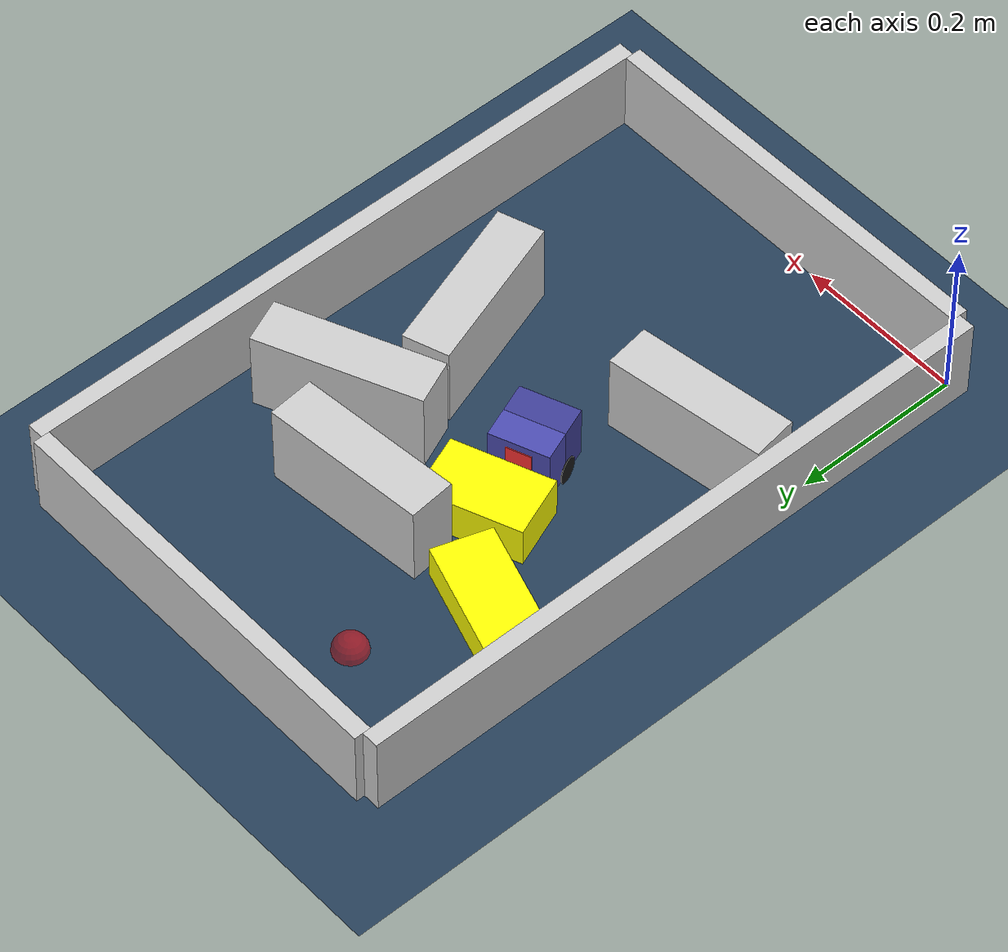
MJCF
<?xml version='1.0' encoding='utf-8'?>
<mujoco model="real_buildable">
  <compiler angle="degree" />
  <option timestep="0.002" integrator="implicitfast" iterations="100" cone="elliptic" />
  <default>
    <geom density="1" />
  </default>
  <asset>
    <texture builtin="gradient" height="3072" rgb1="0.3 0.5 0.7" rgb2="0 0 0" type="skybox" width="512" />
    <texture builtin="checker" height="300" mark="edge" markrgb="0.8 0.8 0.8" name="groundplane" rgb1="0.2 0.3 0.4" rgb2="0.1 0.2 0.3" type="2d" width="300" />
    <material name="groundplane" reflectance="0.2" texrepeat="5 5" texture="groundplane" texuniform="true" />
  </asset>
  <worldbody>
    <light dir="0 0 -1" directional="true" pos="0 0 1.5" />
    <geom name="floor" type="plane" condim="4" friction="0.5 0.005 0.001" material="groundplane" size="0 0 0.05" />
    <body name="walls">
      <geom name="wall_boundary_left" type="box" condim="4" friction="1.0 0.005 0.0001" rgba="0.8 0.8 0.8 1" pos="-0.010000 0.387500 0.050000" euler="0 0 0.000000" size="0.010000 0.397500 0.050000" />
      <geom name="wall_boundary_right" type="box" condim="4" friction="1.0 0.005 0.0001" rgba="0.8 0.8 0.8 1" pos="0.500000 0.387500 0.050000" euler="0 0 0.000000" size="0.010000 0.397500 0.050000" />
      <geom name="wall_boundary_bottom" type="box" condim="4" friction="1.0 0.005 0.0001" rgba="0.8 0.8 0.8 1" pos="0.245000 -0.010000 0.050000" euler="0 0 0.000000" size="0.245000 0.010000 0.050000" />
      <geom name="wall_boundary_top" type="box" condim="4" friction="1.0 0.005 0.0001" rgba="0.8 0.8 0.8 1" pos="0.245000 0.785000 0.050000" euler="0 0 0.000000" size="0.245000 0.010000 0.050000" />
      <geom name="wall_inner_1" type="box" condim="4" friction="1.0 0.005 0.0001" rgba="0.8 0.8 0.8 1" pos="0.100000 0.255000 0.050000" euler="0 0 8.400000" size="0.095000 0.027500 0.050000" />
      <geom name="wall_inner_2" type="box" condim="4" friction="1.0 0.005 0.0001" rgba="0.8 0.8 0.8 1" pos="0.359000 0.329000 0.050000" euler="0 0 108.700000" size="0.097500 0.027500 0.050000" />
      <geom name="wall_inner_3" type="box" condim="4" friction="1.0 0.005 0.0001" rgba="0.8 0.8 0.8 1" pos="0.269000 0.557000 0.050000" euler="0 0 5.500000" size="0.097500 0.027500 0.050000" />
      <geom name="wall_inner_4" type="box" condim="4" friction="1.0 0.005 0.0001" rgba="0.8 0.8 0.8 1" pos="0.374000 0.484000 0.050000" euler="0 0 23.200000" size="0.097500 0.027500 0.050000" />
    </body>
    <body name="car" pos="0.19270661905312803 0.39436552964440802 0.01" quat="0.56586480920236149 0 0 0.82449803984386472">
      <freejoint name="car_freejoint" />
      <inertial pos="0 0 0.0375" mass="0.35" diaginertia="0.000266 0.000266 0.000286" />
      <geom name="front_chassis_collision" type="box" pos="0.0175 0 0.0375" size="0.0175 0.035 0.0325" rgba="0.3 0.3 0.7 1" />
      <geom name="rear_chassis_collision" type="box" pos="-0.0175 0 0.0375" size="0.0175 0.035 0.0325" rgba="0.25 0.25 0.6 1" />
      <geom name="front_marker" type="box" pos="0.034 0 0.0505" size="0.002 0.015 0.01" rgba="1 0.2 0.2 1" contype="0" conaffinity="0" />
      <body name="rear_support_body" pos="-0.03 0 0.0025">
        <joint name="rear_caster_joint" type="ball" damping="0.0001" />
        <inertial pos="0 0 0" mass="0.025" diaginertia="0.000001 0.000001 0.000001" />
        <geom name="rear_support" type="sphere" pos="0 0 0" size="0.0025" friction="0 0 0" rgba="0.7 0.1 0.1 1" />
      </body>
      <body name="front_support_body" pos="0.03 0 0.0025">
        <joint name="front_caster_joint" type="ball" damping="0.0001" />
        <inertial pos="0 0 0" mass="0.025" diaginertia="0.000001 0.000001 0.000001" />
        <geom name="front_support" type="sphere" pos="0 0 0" size="0.0025" friction="0 0 0" rgba="0.1 0.7 0.1 1" />
      </body>
      <body name="left_wheel" pos="0 0.0375 0.015">
        <inertial pos="0 0 0" mass="0.05" diaginertia="0.000003 0.000006 0.000003" />
        <joint name="left_wheel_joint" type="hinge" axis="0 1 0" damping="0.01" armature="0.0001" />
        <geom name="left_wheel_collision" type="cylinder" size="0.015 0.0005" euler="90 0 0" rgba="0.1 0.1 0.1 1" />
      </body>
      <body name="right_wheel" pos="0 -0.0375 0.015">
        <inertial pos="0 0 0" mass="0.05" diaginertia="0.000003 0.000006 0.000003" />
        <joint name="right_wheel_joint" type="hinge" axis="0 1 0" damping="0.01" armature="0.0001" />
        <geom name="right_wheel_collision" type="cylinder" size="0.015 0.0005" euler="90 0 0" rgba="0.1 0.1 0.1 1" />
      </body>
    </body>
    <body name="obstacle_0_movable">
      <geom name="obstacle_0_movable" condim="4" pos="0.18157048487969712 0.46841722962794763 0.025000000000000001" friction="1 0.005 0.0001" rgba="1 1 0 1" size="0.037500 0.060000 0.025000" type="box" mass="0.1" quat="0.82498908315684494 0 0 -0.56514866422210397" />
      <joint type="free" />
    </body>
    <body name="obstacle_1_movable">
      <geom name="obstacle_1_movable" condim="4" pos="0.082035244540593466 0.54980402542316009 0.02" friction="1 0.005 0.0001" rgba="1 1 0 1" size="0.035000 0.075000 0.020000" type="box" mass="0.1" quat="0.80870769750073024 0 0 0.58821072754844184" />
      <joint type="free" />
    </body>
    <site name="goal" type="sphere" pos="0.144000 0.680000 0.0" size="0.02" rgba="1 0 0 0.5" />
  </worldbody>
  <actuator>
    <velocity name="left_wheel_drive" joint="left_wheel_joint" ctrlrange="-25 25" kv="0.75" forcerange="-0.5 0.5" />
    <velocity name="right_wheel_drive" joint="right_wheel_joint" ctrlrange="-25 25" kv="0.75" forcerange="-0.5 0.5" />
  </actuator>
</mujoco>
